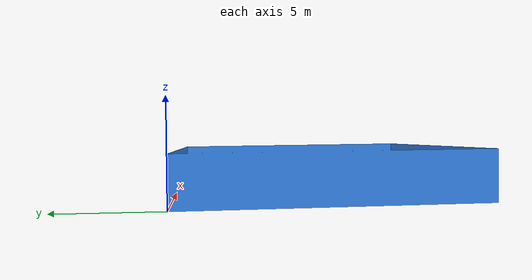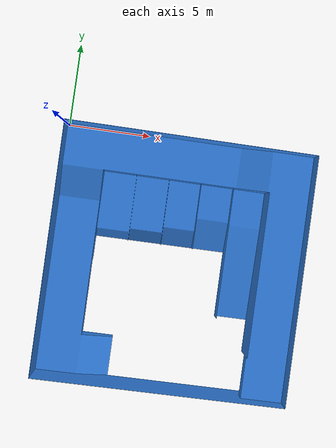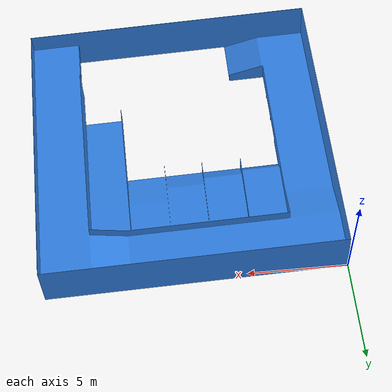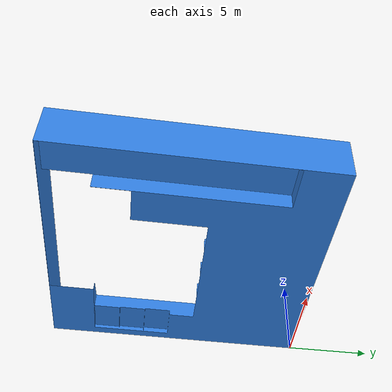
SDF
<?xml version="1.0"?>
<sdf version="1.7">
    <model name="field">
        <link name="body">
        <visual name="visual">
            <pose>0 0 0 1.5632 0.0564 0.0013</pose>
            <material>
            <ambient>0.1882 0.4980 0.8862 1</ambient>
            <diffuse>0.1882 0.4980 0.8862 1</diffuse>
            <specular>0 0 0 0</specular>
            <emissive>0 0 0 1</emissive>
            <shader type="vertex">
                <normal_map>__default__</normal_map>
            </shader>
            </material>
            <geometry>
            <mesh>
                <uri>meshes/field.stl</uri>
                <scale>0.001 0.001 0.001</scale>
                </mesh>
            </geometry>
        </visual>
        <collision name='fieldcollision'>
            <geometry>
            <mesh>
                <uri>meshes/field.stl</uri>
                <scale>0.001 0.001 0.001</scale>
                </mesh>
            </geometry>
        </collision>
        </link>
    </model>
</sdf>
